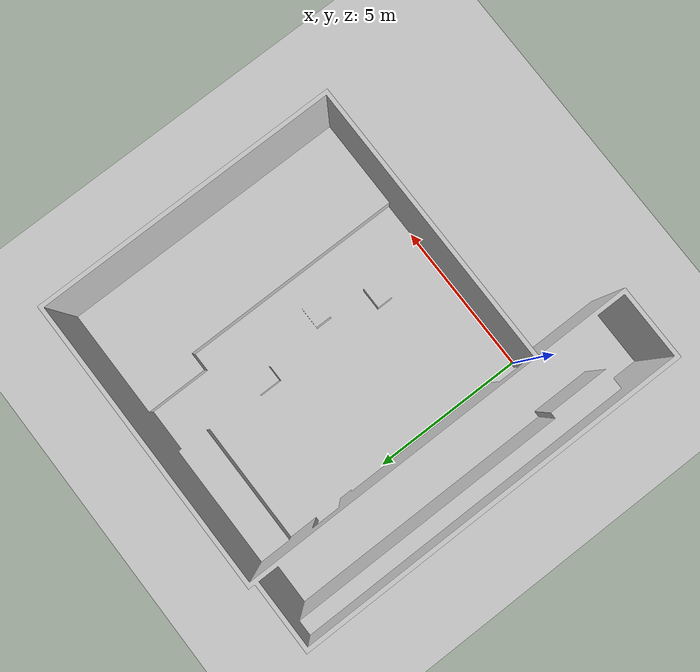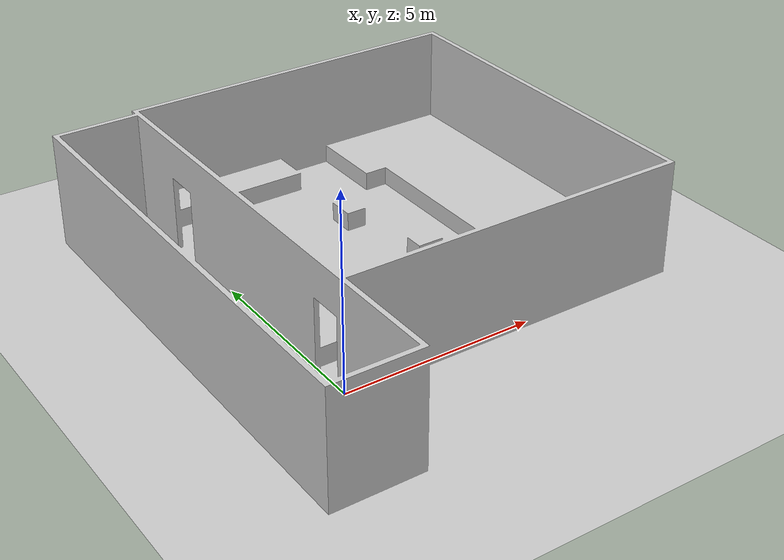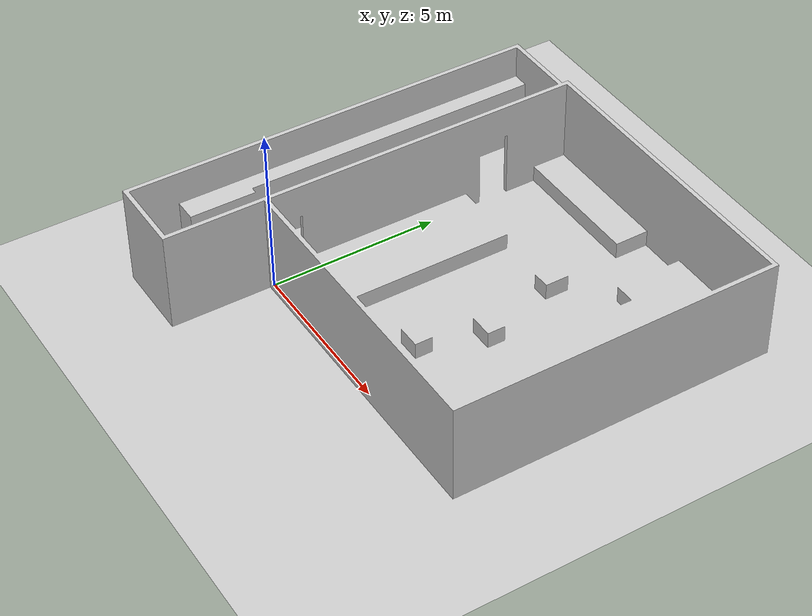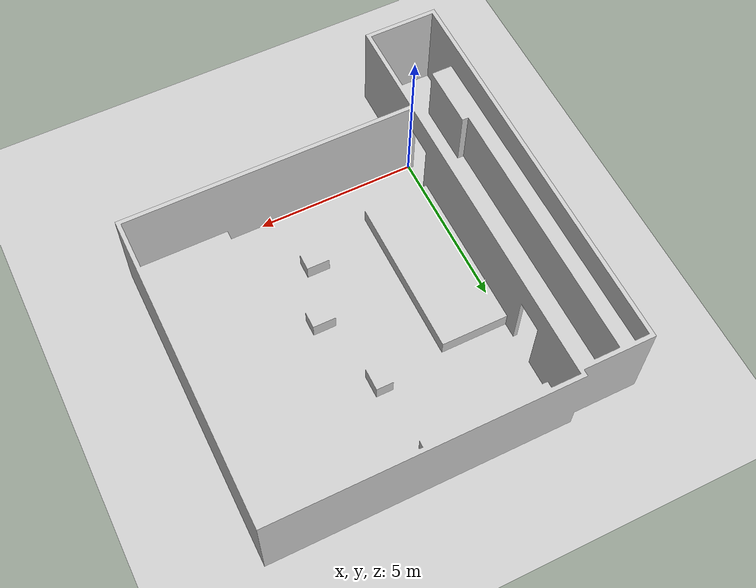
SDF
<sdf version="1.7">
  <world name="sim_world">
    <plugin
      filename="gz-sim-physics-system"
      name="gz::sim::systems::Physics">
    </plugin>
    <plugin
      filename="gz-sim-sensors-system"
      name="gz::sim::systems::Sensors">
      <render_engine>ogre2</render_engine>
    </plugin>
    <plugin
      filename="gz-sim-user-commands-system"
      name="gz::sim::systems::UserCommands">
    </plugin>
    <plugin
      filename="gz-sim-scene-broadcaster-system"
      name="gz::sim::systems::SceneBroadcaster">
    </plugin>
    <plugin filename="gz-sim-imu-system"
        name="gz::sim::systems::Imu">
    </plugin>
    <scene>
      <ambient>1 1 1</ambient>
      <background>0.8 0.8 0.8</background>
      <grid>false</grid>
    </scene>

    <include>
      <uri>
        https://fuel.gazebosim.org/1.0/OpenRobotics/models/Ground Plane
      </uri>
    </include>

    <light type="directional" name="sun">
      <cast_shadows>true</cast_shadows>
      <pose>0 0 10 0 0 0</pose>
      <diffuse>1 1 1 1</diffuse>
      <specular>0.2 0.2 0.2 1</specular>
      <attenuation>
        <range>1000</range>
        <constant>0.09</constant>
        <linear>0.001</linear>
        <quadratic>0.001</quadratic>
      </attenuation>
      <direction>-0.5 0.1 -0.9</direction>
    </light>

    <include>
      <name>shopee_map</name>
      <uri>/home/wonho/tech_research/Shopee/shopee_ros2/src/pickee_mobile_wonho/models/shopee_map</uri>
      <pose>0 0 0.01 0 0 0</pose>
    </include>
  </world>
</sdf>

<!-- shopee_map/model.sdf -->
<sdf version="1.6">
  <model name="shopee_map">
    <static>true</static>
    <link name="shopee_link">
      <pose>0 0 0 1.5708 0 0</pose>
      <visual name="shopee_visual">
        <geometry>
          <mesh>
            <uri>/home/wonho/tech_research/Shopee/shopee_ros2/src/pickee_mobile_wonho/models/shopee_map/meshes/shopee_map2.obj</uri>
          </mesh>
        </geometry>
        <material>
          <ambient>1 1 1 1</ambient>
          <diffuse>0.8 0.8 0.8 1</diffuse>
        </material>
      </visual>
      <collision name="shopee_collision">
        <geometry>
          <mesh>
            <uri>/home/wonho/tech_research/Shopee/shopee_ros2/src/pickee_mobile_wonho/models/shopee_map/meshes/shopee_map2.obj</uri>
          </mesh>
        </geometry>
      </collision>
    </link>
  </model>
</sdf>
